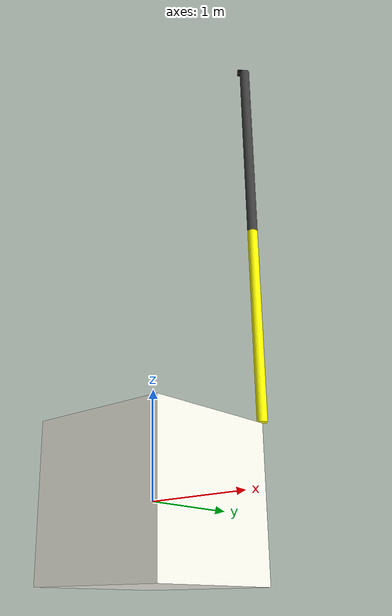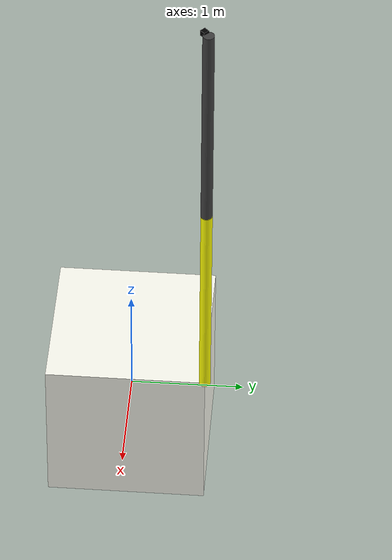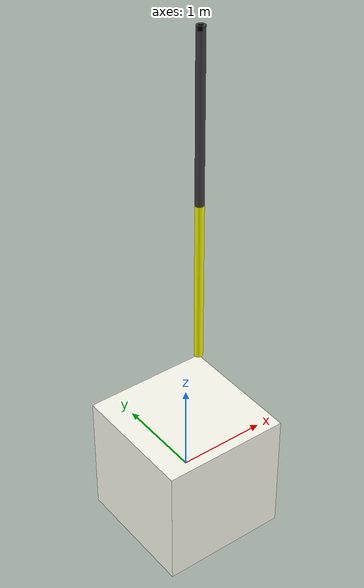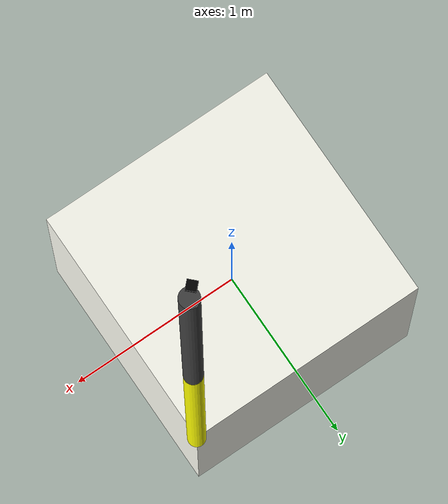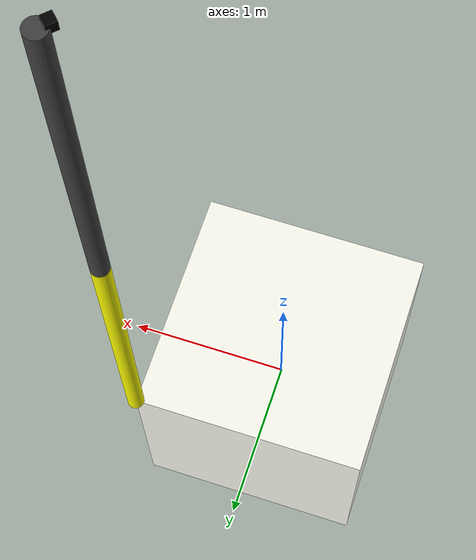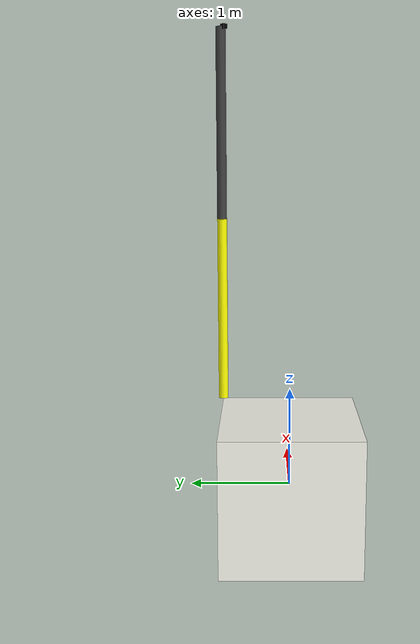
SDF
<sdf version='1.9'>
  <model name='space_robot'>
    <link name='world_anchor'>
      <inertial>
        <pose>0 0 0 0 0 0</pose>
        <mass>300</mass>
        <inertia>
          <ixx>50</ixx>
          <ixy>0</ixy>
          <ixz>0</ixz>
          <iyy>50</iyy>
          <iyz>0</iyz>
          <izz>50</izz>
        </inertia>
      </inertial>
      <collision name='world_anchor_fixed_joint_lump__base_link_collision'>
        <pose>0 0 0 0 0 0</pose>
        <geometry>
          <box>
            <size>1.401 1.401 1.401</size>
          </box>
        </geometry>
        <surface>
          <contact>
            <ode/>
          </contact>
          <friction>
            <ode/>
          </friction>
        </surface>
      </collision>
      <visual name='world_anchor_fixed_joint_lump__base_link_visual'>
        <pose>0 0 0 0 0 0</pose>
        <geometry>
          <box>
            <size>1.4 1.4 1.4</size>
          </box>
        </geometry>
        <material>
          <diffuse>1 1 0.955882 1</diffuse>
          <ambient>1 1 0.955882 1</ambient>
        </material>
      </visual>
    </link>
    <joint name='link_1_joint' type='revolute'>
      <pose relative_to='world_anchor'>0.7 0.7 0.7024999999999999 2.356194490192345 -1.570796326794897 0</pose>
      <parent>world_anchor</parent>
      <child>link_1</child>
      <axis>
        <xyz>0 0 1</xyz>
        <limit>
          <lower>-3.1400000000000001</lower>
          <upper>3.1400000000000001</upper>
          <effort>1000</effort>
          <velocity>1</velocity>
        </limit>
        <dynamics>
          <spring_reference>0</spring_reference>
          <spring_stiffness>0</spring_stiffness>
        </dynamics>
      </axis>
    </joint>
    <link name='link_1'>
      <pose relative_to='link_1_joint'>0 0 0 0 0 0</pose>
      <inertial>
        <pose>0.9724999999999999 0 0 0 1.570796326794897 0</pose>
        <mass>25</mass>
        <inertia>
          <ixx>7.8407999999999998</ixx>
          <ixy>0</ixy>
          <ixz>0</ixz>
          <iyy>7.8407999999999998</iyy>
          <iyz>0</iyz>
          <izz>7.8407999999999998</izz>
        </inertia>
      </inertial>
      <collision name='link_1_collision'>
        <pose>0.9724999999999999 0 0 0 1.570796326794897 0</pose>
        <geometry>
          <cylinder>
            <length>1.9399999999999999</length>
            <radius>0.050999999999999997</radius>
          </cylinder>
        </geometry>
        <surface>
          <contact>
            <ode/>
          </contact>
          <friction>
            <ode>
              <mu>0.20000000000000001</mu>
              <mu2>0.20000000000000001</mu2>
            </ode>
          </friction>
        </surface>
      </collision>
      <visual name='link_1_visual'>
        <pose>0.9724999999999999 0 0 0 1.570796326794897 0</pose>
        <geometry>
          <cylinder>
            <length>1.9399999999999999</length>
            <radius>0.050000000000000003</radius>
          </cylinder>
        </geometry>
        <material>
          <diffuse>1 1 0 1</diffuse>
          <ambient>1 1 0 1</ambient>
        </material>
      </visual>
    </link>
    <joint name='link_2_joint' type='revolute'>
      <pose relative_to='link_1'>1.9425 0 0 0 0 0</pose>
      <parent>link_1</parent>
      <child>link_2</child>
      <axis>
        <xyz>0 0 1</xyz>
        <limit>
          <lower>-3.1400000000000001</lower>
          <upper>3.1400000000000001</upper>
          <effort>1000</effort>
          <velocity>1</velocity>
        </limit>
        <dynamics>
          <spring_reference>0</spring_reference>
          <spring_stiffness>0</spring_stiffness>
        </dynamics>
      </axis>
    </joint>
    <link name='link_2'>
      <pose relative_to='link_2_joint'>0 0 0 0 0 0</pose>
      <inertial>
        <pose>0.9728868452618951 2.039184326269492e-05 0 0 1.570796326794897 0</pose>
        <mass>25.010000000000002</mass>
        <inertia>
          <ixx>7.8511828193722506</ixx>
          <ixy>-3.0201486748764642e-20</ixy>
          <ixz>-5.7293996920453732e-19</ixz>
          <iyy>7.8511568197720933</iyy>
          <iyz>-0.00049322770891643353</iyz>
          <izz>7.84182599960016</izz>
        </inertia>
      </inertial>
      <collision name='link_2_collision'>
        <pose>0.9724999999999999 0 0 0 1.570796326794897 0</pose>
        <geometry>
          <cylinder>
            <length>1.9399999999999999</length>
            <radius>0.050999999999999997</radius>
          </cylinder>
        </geometry>
        <surface>
          <contact>
            <ode/>
          </contact>
          <friction>
            <ode>
              <mu>0.20000000000000001</mu>
              <mu2>0.20000000000000001</mu2>
            </ode>
          </friction>
        </surface>
      </collision>
      <collision name='link_2_fixed_joint_lump__front_depth_cam_link_collision_1'>
        <pose>1.94 0.051 0 0 0 0</pose>
        <geometry>
          <box>
            <size>0.05 0.05 0.05</size>
          </box>
        </geometry>
        <surface>
          <contact>
            <ode/>
          </contact>
          <friction>
            <ode/>
          </friction>
        </surface>
      </collision>
      <visual name='link_2_visual'>
        <pose>0.9724999999999999 0 0 0 1.570796326794897 0</pose>
        <geometry>
          <cylinder>
            <length>1.9399999999999999</length>
            <radius>0.050000000000000003</radius>
          </cylinder>
        </geometry>
        <material>
          <diffuse>0.25 0.25 0.25 1</diffuse>
          <ambient>0.25 0.25 0.25 1</ambient>
        </material>
      </visual>
      <visual name='link_2_fixed_joint_lump__front_depth_cam_link_visual_1'>
        <pose>1.94 0.051 0 0 0 0</pose>
        <geometry>
          <box>
            <size>0.05 0.05 0.05</size>
          </box>
        </geometry>
        <material>
          <diffuse>0 0 0 1</diffuse>
          <ambient>0 0 0 1</ambient>
        </material>
      </visual>
      <sensor name='default_params' type='rgbd_camera'>
        <camera>
          <horizontal_fov>1.0469999999999999</horizontal_fov>
          <image>
            <width>320</width>
            <height>240</height>
          </image>
          <clip>
            <near>0.10000000000000001</near>
            <far>100</far>
          </clip>
        </camera>
        <always_on>true</always_on>
        <update_rate>30</update_rate>
        <visualize>true</visualize>
        <topic>rgbd_camera</topic>
        <pose>1.94 0.051 0 0 -0 0</pose>
      </sensor>
    </link>
    <plugin name='gz_ros2_control::GazeboSimROS2ControlPlugin' filename='gz_ros2_control-system'>
      <parameters>/workspace/ros2_projects/space_robot_ws/install/space_robot_config/share/space_robot_config/config/ros2_controllers.yaml</parameters>
    </plugin>
    <plugin name='gz::sim::systems::JointStatePublisher' filename='gz-sim-joint-state-publisher-system'>
      <topic>/joint_states</topic>
      <joint_name>link_1_joint</joint_name>
      <joint_name>link_2_joint</joint_name>
    </plugin>
    <static>false</static>
    <allow_auto_disable>false</allow_auto_disable>
    <frame name='base_joint' attached_to='world_anchor'>
      <pose>0 0 0 0 -0 0</pose>
    </frame>
    <frame name='base_link' attached_to='base_joint'/>
    <frame name='front_depth_cam_optical_joint' attached_to='front_depth_cam_link'>
      <pose>0 0 0 1.5708 -0 1.5708</pose>
    </frame>
    <frame name='front_depth_cam_optical_frame' attached_to='front_depth_cam_optical_joint'/>
    <frame name='front_depth_cam_joint' attached_to='link_2'>
      <pose>1.94 0.051 0 0 -0 0</pose>
    </frame>
    <frame name='front_depth_cam_link' attached_to='front_depth_cam_joint'/>
  </model>
</sdf>
